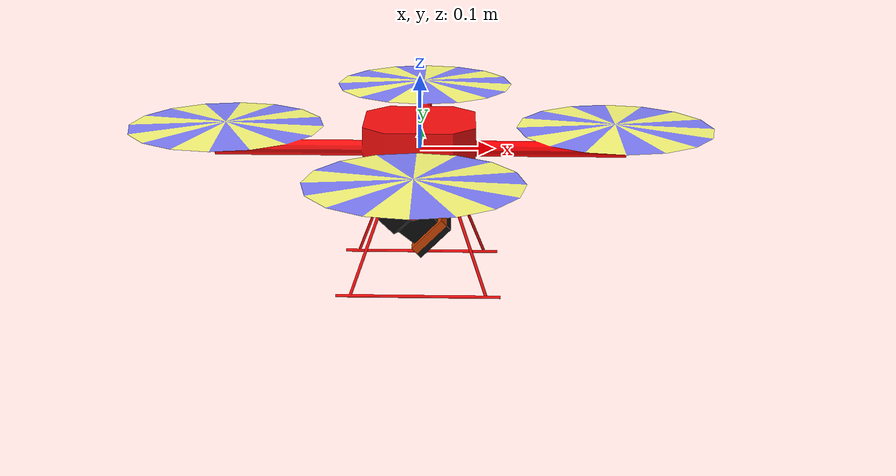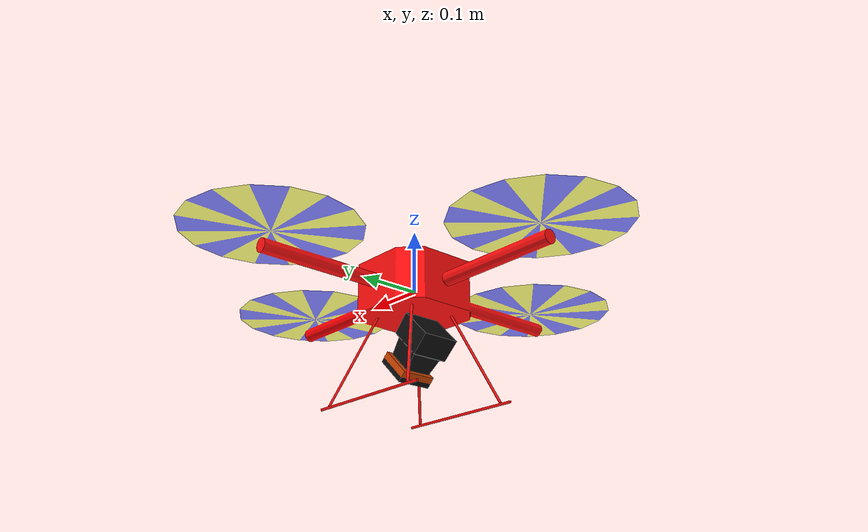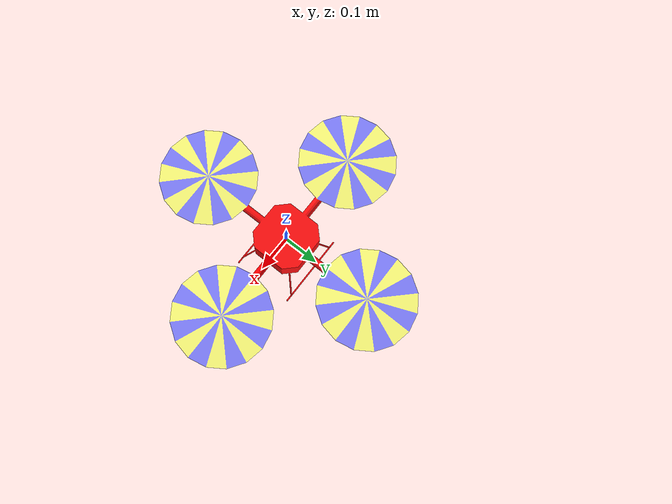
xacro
<?xml version="1.0"?>

<robot
  name="quadrotor"
  xmlns:xacro="http://ros.org/wiki/xacro"
>

    <xacro:property name="M_PI" value="3.1415926535897931" />

    <!-- Included URDF Files -->
    <xacro:include filename="$(find hector_quadrotor_description)/urdf/quadrotor_base.urdf.xacro" />

    <!-- Instantiate quadrotor_base_macro once (has no parameters atm) -->
    <xacro:quadrotor_base_macro />

    <xacro:include filename="$(find hector_components_description)/urdf/spinning_hokuyo_utm30lx.urdf.xacro" />
    <xacro:spinning_hokuyo_utm30lx_macro name="spinning_hokuyo" parent="base_link" angle_deg="45" >
      <origin xyz="0.0 0.0 -0.05" rpy="${M_PI} 0 0"/>
    </xacro:spinning_hokuyo_utm30lx_macro>

    <!-- Downward facing camera -->
    <xacro:include filename="$(find hector_sensors_description)/urdf/generic_camera.urdf.xacro" />
    <xacro:generic_camera name="downward_cam" parent="base_link" ros_topic="camera/image" cam_info_topic="camera/camera_info" update_rate="20" res_x="640" res_y="480" image_format="L8" hfov="100">
      <origin xyz="0.4 0.0 -0.0" rpy="0 ${M_PI/2} 0"/>
    </xacro:generic_camera>

</robot>

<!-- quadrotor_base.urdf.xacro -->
<robot xmlns:xacro="http://www.ros.org/wiki/xacro">

  <xacro:property name="pi" value="3.1415926535897931" />

  <!-- Main quadrotor link -->
  <xacro:macro name="quadrotor_base_macro">
    <link name="base_link">
      <inertial>
        <mass value="1.477" />
        <origin xyz="0 0 0" />
        <inertia ixx="0.01152" ixy="0.0" ixz="0.0" iyy="0.01152" iyz="0.0" izz="0.0218" />
      </inertial>

      <visual>
        <origin xyz="0 0 0" rpy="0 0 0" />
        <geometry>
          <mesh filename="package://hector_quadrotor_description/meshes/quadrotor/quadrotor_base.dae"/>
        </geometry>
      </visual>

      <collision>
        <origin xyz="0 0 0" rpy="0 0 0" />
        <geometry>
          <mesh filename="package://hector_quadrotor_description/meshes/quadrotor/quadrotor_base.stl"/>
        </geometry>
      </collision>
    </link>

    <!-- Sonar height sensor -->

  </xacro:macro>
</robot>

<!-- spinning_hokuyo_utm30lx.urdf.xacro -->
<robot xmlns:xacro="http://www.ros.org/wiki/xacro">

  <xacro:property name="M_PI" value="3.14159265359"/>

  <xacro:include filename="$(find hector_components_description)/urdf/spinning_lidar_mount.urdf.xacro"/>
  <xacro:include filename="$(find hector_sensors_description)/urdf/hokuyo_utm30lx.urdf.xacro"/>

  <xacro:macro name="spinning_hokuyo_utm30lx_macro" params="parent name angle_deg *origin">
    <xacro:spinning_lidar_macro parent="${parent}" name="${name}" angle_deg="45">
      <xacro:insert_block name="origin"/>
    </xacro:spinning_lidar_macro>

    <xacro:hokuyo_utm30lx_gpu name="${name}_hokuyo_laser" parent="${name}_spinning_lidar_spin_link" ros_topic="${name}_spinning_lidar/scan" update_rate="40" ray_count="1040" min_angle="-130" max_angle="130">
      <origin xyz="0.00 -0.0 0.055" rpy="0 ${angle_deg * M_PI/180.0} 0"/>
    </xacro:hokuyo_utm30lx_gpu>
  </xacro:macro>

  <xacro:macro name="spinning_hokuyo_utm30lx_lidar_mount_offset_macro" params="parent name scan_topic_in_namespace angle_deg *origin">
    <xacro:spinning_hokuyo_utm30lx_lidar_calibration_offset_macro parent="${parent}" name="${name}" scan_topic_in_namespace="${scan_topic_in_namespace}" angle_deg="${angle_deg}">
      <xacro:insert_block name="origin"/>
      <origin xyz="0.021 0 0" rpy="0 ${-angle_deg * M_PI/180.0} ${M_PI}"/>
    </xacro:spinning_hokuyo_utm30lx_lidar_calibration_offset_macro>
  </xacro:macro>

    <xacro:macro name="spinning_hokuyo_utm30lx_lidar_calibration_offset_macro" params="parent name scan_topic_in_namespace angle_deg *origin *calibration">
    <xacro:spinning_lidar_macro parent="${parent}" name="${name}" angle_deg="45">
      <xacro:insert_block name="origin"/>
    </xacro:spinning_lidar_macro>

    <xacro:hokuyo_utm30lx_gpu name="${name}_hokuyo_laser" parent="${name}_spinning_lidar_spin_link" ros_topic="${name}_spinning_lidar/${scan_topic_in_namespace}" update_rate="40" ray_count="1040" min_angle="-130" max_angle="130">
      <xacro:insert_block name="calibration"/>
    </xacro:hokuyo_utm30lx_gpu>
  </xacro:macro>
</robot>

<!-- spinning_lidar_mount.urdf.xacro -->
<robot xmlns:xacro="http://ros.org/wiki/xacro">

  <xacro:include filename="$(find hector_xacro_tools)/urdf/inertia_tensors.urdf.xacro" />

  <xacro:property name="M_PI" value="3.14159265359"/>

  <xacro:macro name="spinning_lidar_macro" params="parent name angle_deg *origin">

    <joint name="${name}_spinning_lidar_root_joint" type="fixed">
      <xacro:insert_block name="origin"/>
      <axis xyz="0 1 0"/>
      <parent link="${parent}"/>
      <child link="${name}_spinning_lidar_root_link"/>
    </joint>

    <link name="${name}_spinning_lidar_root_link">
      <xacro:inertial_sphere_with_pose mass="0.01" diameter="0.03">
        <origin xyz="0.0 0.0 0.0" rpy="0 0 0"/>
      </xacro:inertial_sphere_with_pose>
    </link>

    <joint name="${name}_spinning_lidar_spin_joint" type="continuous">
      <parent link="${name}_spinning_lidar_root_link"/>
      <child link="${name}_spinning_lidar_spin_link"/>
      <origin xyz="0 0 0.00" rpy="0 ${0 * M_PI/180.0} 0"/>
      <axis xyz="0 0 1" rpy="0 0 0"/>
      <limit effort="1000" velocity="100"/>
      <joint_properties damping="0.0" friction="0.0"/>
    </joint>

    <link name="${name}_spinning_lidar_spin_link">
      <xacro:inertial_sphere_with_pose mass="0.01" diameter="0.03">
        <origin xyz="0.0 0.0 -0.0" rpy="0 0 0"/>
      </xacro:inertial_sphere_with_pose>
    </link>

    <transmission name="${name}_spinning_lidar_spin_joint_transmssion">
      <type>transmission_interface/SimpleTransmission</type>
      <joint name="${name}_spinning_lidar_spin_joint">
        <hardwareInterface>EffortJointInterface</hardwareInterface>
      </joint>
      <actuator name="${name}_spinning_lidar_spin_joint_motor">
        <hardwareInterface>EffortJointInterface</hardwareInterface>
        <mechanicalReduction>1</mechanicalReduction>
      </actuator>
    </transmission>

  </xacro:macro>
</robot>

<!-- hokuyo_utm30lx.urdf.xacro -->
<robot xmlns:xacro="http://ros.org/wiki/xacro">
    <xacro:property name="M_PI" value="3.1415926535897931" />

    <xacro:macro name="hokuyo_utm30lx_model" params="name parent *origin">
      <joint name="${name}_joint" type="fixed">
        <xacro:insert_block name="origin" />
        <parent link="${parent}"/>
        <child link="${name}_frame"/>
      </joint>

      <link name="${name}_frame">
        <inertial>
          <mass value="0.270" />
          <origin xyz="0 0 0" rpy="0 0 0" />
          <inertia ixx="2.632e-4" ixy="0" ixz="0" iyy="2.632e-4" iyz="0" izz="1.62e-4" />
        </inertial>
        <visual>
          <origin xyz="0 0 0" rpy="0 0 0" />
          <geometry>
          <mesh filename="package://hector_sensors_description/meshes/hokuyo_utm30lx/hokuyo_utm_30lx$(optenv TEST_SELF_FILTER).dae"/>
        </geometry>
        </visual>
        <collision>
          <origin xyz="0.00 0 0.0" rpy="0 ${0.5 * M_PI} 0" />
          <geometry>
	    <cylinder length="0.079" radius="0.0735"/>
        </geometry>
        </collision>
      </link>
    </xacro:macro>

    <xacro:macro name="hokuyo_utm30lx" params="name parent *origin ros_topic update_rate ray_count min_angle max_angle">
      <xacro:hokuyo_utm30lx_model name="${name}" parent="${parent}">
        <xacro:insert_block name="origin" />
      </xacro:hokuyo_utm30lx_model>

      <gazebo reference="${name}_frame">
        <sensor type="ray" name="${name}">
          <always_on>true</always_on>
          <update_rate>${update_rate}</update_rate>
          <pose>0 0 0 0 0 0</pose>
          <visualize>false</visualize>
          <ray>
            <scan>
              <horizontal>
                <samples>${ray_count}</samples>
                <resolution>1</resolution>
                <min_angle>${min_angle * M_PI/180}</min_angle>
                <max_angle>${max_angle * M_PI/180}</max_angle>
              </horizontal>
            </scan>
            <range>
              <min>0.2</min>
              <max>30.0</max>
              <resolution>0.01</resolution>
            </range>
            <noise>
              <type>gaussian</type>
              <mean>0.0</mean>
              <stddev>0.004</stddev>
            </noise>
          </ray>
          <plugin name="gazebo_ros_${name}_controller" filename="libgazebo_ros_laser.so">
            <gaussianNoise>0.005</gaussianNoise>
            <hokuyoMinIntensity>2000</hokuyoMinIntensity>
            <alwaysOn>true</alwaysOn>
	    <robotNamespace>$(arg robot_name)/sensor/</robotNamespace>
            <updateRate>${update_rate}</updateRate>
            <topicName>${ros_topic}</topicName>
            <frameName>${name}_frame</frameName>
          </plugin>
        </sensor>
      </gazebo>
    </xacro:macro>

    <xacro:macro name="hokuyo_utm30lx_gpu" params="name parent *origin ros_topic update_rate ray_count min_angle max_angle">
      <xacro:hokuyo_utm30lx_model name="${name}" parent="${parent}">
        <xacro:insert_block name="origin" />
      </xacro:hokuyo_utm30lx_model>

      <gazebo reference="${name}_frame">
        <sensor type="gpu_ray" name="${name}">
          <update_rate>${update_rate}</update_rate>
          <pose>0 0 0 0 0 0</pose>
          <visualize>false</visualize>
          <ray>
            <scan>
              <horizontal>
                <samples>${ray_count}</samples>
                <resolution>1</resolution>
                <min_angle>${min_angle * M_PI/180}</min_angle>
                <max_angle>${max_angle * M_PI/180}</max_angle>
              </horizontal>
            </scan>
            <range>
              <min>0.2</min>
              <max>30.0</max>
              <resolution>0.01</resolution>
            </range>
            <noise>
              <type>gaussian</type>
              <mean>0.0</mean>
              <stddev>0.004</stddev>
            </noise>
          </ray>
          <plugin name="gazebo_ros_${name}_controller" filename="libgazebo_ros_gpu_laser.so">
            <topicName>${ros_topic}</topicName>
            <frameName>${name}_frame</frameName>
          </plugin>
        </sensor>
      </gazebo>
    </xacro:macro>
</robot>

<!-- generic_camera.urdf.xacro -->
<robot xmlns:xacro="http://www.ros.org/wiki/xacro">
  <xacro:arg name="simulator" default="gazebo"/>
  <xacro:property name="M_PI" value="3.1415926535897931" />

  <xacro:macro name="generic_camera" params="name parent *origin ros_topic cam_info_topic update_rate res_x res_y image_format hfov">
    <joint name="${name}_joint" type="fixed">
      <xacro:insert_block name="origin" />
      <parent link="${parent}"/>
      <child link="${name}_link"/>
    </joint>

    <link name="${name}_link">
    </link>

    <joint name="${name}_optical_joint" type="fixed">
      <origin xyz="0 0 0" rpy="${-M_PI/2} 0.0 ${-M_PI/2}" />
      <parent link="${name}_link" />
      <child link="${name}_optical_frame"/>
    </joint>

    <link name="${name}_optical_frame"/>
    <gazebo reference="${name}_link">
      <sensor type="camera" name="${name}_camera_sensor">
        <update_rate>${update_rate}</update_rate>
        <camera>
          <horizontal_fov>${hfov * M_PI/180.0}</horizontal_fov>
          <image>
            <format>${image_format}</format>
            <width>${res_x}</width>
            <height>${res_y}</height>
          </image>
          <clip>
            <near>0.01</near>
            <far>100</far>
          </clip>
        </camera>

        <xacro:if value="${'$(arg simulator)' == 'gazebo'}">
          <plugin name="${name}_camera_controller" filename="libgazebo_ros_camera.so">
            <cameraName>${name}</cameraName>
            <imageTopicName>${ros_topic}</imageTopicName>
            <cameraInfoTopicName>${cam_info_topic}</cameraInfoTopicName>
            <frameName>${name}_optical_frame</frameName>
          </plugin>
        </xacro:if>
      </sensor>
    </gazebo>
  </xacro:macro>

</robot>
